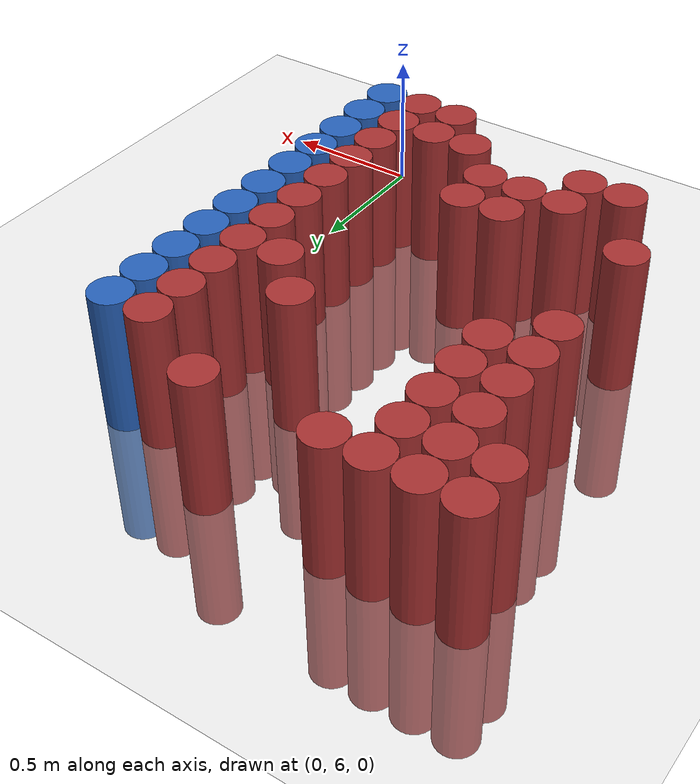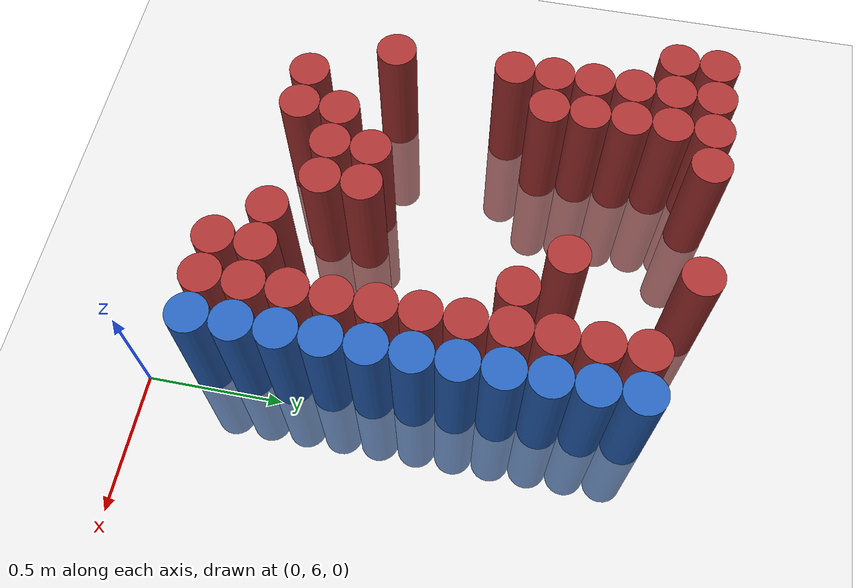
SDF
<sdf version="1.6">
 <world name="default">
  <model name="ground_plane">
   <static>1</static>
   <link name="link">
    <collision name="collision">
     <geometry><plane><normal>0 0 1</normal><size>100 100</size></plane></geometry>
     <surface><friction><ode><mu>100</mu><mu2>50</mu2></ode></friction></surface>
    </collision>
    <visual name="visual">
     <cast_shadows>0</cast_shadows>
     <geometry><plane><normal>0 0 1</normal><size>100 100</size></plane></geometry>
     <material>
      <script><uri>file://media/materials/scripts/gazebo.material</uri><name>Gazebo/Grey</name></script>
     </material>
    </visual>
   </link>
  </model>
  <model name="unit_cylinder_223">
   <static>1</static>
   <pose>-1.425000 7.725000 0.000000 0.000000 0.000000 0.000000</pose>
   <link name="link">
    <inertial>
     <mass>1</mass>
     <inertia><ixx>0.145833</ixx><ixy>0</ixy><ixz>0</ixz><iyy>0.145833</iyy><iyz>0</iyz><izz>0.125</izz></inertia>
    </inertial>
    <collision name="collision">
     <geometry><cylinder><radius>0.075000</radius><length>1</length></cylinder></geometry>
    </collision>
    <visual name="visual">
     <geometry><cylinder><radius>0.075000</radius><length>1</length></cylinder></geometry>
     <material>
      <ambient>0.648000 0.192000 0.192000 1</ambient>
      <diffuse>0.648000 0.192000 0.192000 1</diffuse>
     </material>
     <material>
      <script><name>Gazebo/Grey</name><uri>file://media/materials/scripts/gazebo.material</uri></script>
     </material>
    </visual>
   </link>
  </model>
  <model name="unit_cylinder_224">
   <static>1</static>
   <pose>-1.425000 7.875000 0.000000 0.000000 0.000000 0.000000</pose>
   <link name="link">
    <inertial>
     <mass>1</mass>
     <inertia><ixx>0.145833</ixx><ixy>0</ixy><ixz>0</ixz><iyy>0.145833</iyy><iyz>0</iyz><izz>0.125</izz></inertia>
    </inertial>
    <collision name="collision">
     <geometry><cylinder><radius>0.075000</radius><length>1</length></cylinder></geometry>
    </collision>
    <visual name="visual">
     <geometry><cylinder><radius>0.075000</radius><length>1</length></cylinder></geometry>
     <material>
      <ambient>0.648000 0.192000 0.192000 1</ambient>
      <diffuse>0.648000 0.192000 0.192000 1</diffuse>
     </material>
     <material>
      <script><name>Gazebo/Grey</name><uri>file://media/materials/scripts/gazebo.material</uri></script>
     </material>
    </visual>
   </link>
  </model>
  <model name="unit_cylinder_228">
   <static>1</static>
   <pose>-1.275000 6.675000 0.000000 0.000000 0.000000 0.000000</pose>
   <link name="link">
    <inertial>
     <mass>1</mass>
     <inertia><ixx>0.145833</ixx><ixy>0</ixy><ixz>0</ixz><iyy>0.145833</iyy><iyz>0</iyz><izz>0.125</izz></inertia>
    </inertial>
    <collision name="collision">
     <geometry><cylinder><radius>0.075000</radius><length>1</length></cylinder></geometry>
    </collision>
    <visual name="visual">
     <geometry><cylinder><radius>0.075000</radius><length>1</length></cylinder></geometry>
     <material>
      <ambient>0.648000 0.192000 0.192000 1</ambient>
      <diffuse>0.648000 0.192000 0.192000 1</diffuse>
     </material>
     <material>
      <script><name>Gazebo/Grey</name><uri>file://media/materials/scripts/gazebo.material</uri></script>
     </material>
    </visual>
   </link>
  </model>
  <model name="unit_cylinder_229">
   <static>1</static>
   <pose>-1.275000 7.125000 0.000000 0.000000 0.000000 0.000000</pose>
   <link name="link">
    <inertial>
     <mass>1</mass>
     <inertia><ixx>0.145833</ixx><ixy>0</ixy><ixz>0</ixz><iyy>0.145833</iyy><iyz>0</iyz><izz>0.125</izz></inertia>
    </inertial>
    <collision name="collision">
     <geometry><cylinder><radius>0.075000</radius><length>1</length></cylinder></geometry>
    </collision>
    <visual name="visual">
     <geometry><cylinder><radius>0.075000</radius><length>1</length></cylinder></geometry>
     <material>
      <ambient>0.648000 0.192000 0.192000 1</ambient>
      <diffuse>0.648000 0.192000 0.192000 1</diffuse>
     </material>
     <material>
      <script><name>Gazebo/Grey</name><uri>file://media/materials/scripts/gazebo.material</uri></script>
     </material>
    </visual>
   </link>
  </model>
  <model name="unit_cylinder_230">
   <static>1</static>
   <pose>-1.275000 7.275000 0.000000 0.000000 0.000000 0.000000</pose>
   <link name="link">
    <inertial>
     <mass>1</mass>
     <inertia><ixx>0.145833</ixx><ixy>0</ixy><ixz>0</ixz><iyy>0.145833</iyy><iyz>0</iyz><izz>0.125</izz></inertia>
    </inertial>
    <collision name="collision">
     <geometry><cylinder><radius>0.075000</radius><length>1</length></cylinder></geometry>
    </collision>
    <visual name="visual">
     <geometry><cylinder><radius>0.075000</radius><length>1</length></cylinder></geometry>
     <material>
      <ambient>0.648000 0.192000 0.192000 1</ambient>
      <diffuse>0.648000 0.192000 0.192000 1</diffuse>
     </material>
     <material>
      <script><name>Gazebo/Grey</name><uri>file://media/materials/scripts/gazebo.material</uri></script>
     </material>
    </visual>
   </link>
  </model>
  <model name="unit_cylinder_231">
   <static>1</static>
   <pose>-1.275000 7.425000 0.000000 0.000000 0.000000 0.000000</pose>
   <link name="link">
    <inertial>
     <mass>1</mass>
     <inertia><ixx>0.145833</ixx><ixy>0</ixy><ixz>0</ixz><iyy>0.145833</iyy><iyz>0</iyz><izz>0.125</izz></inertia>
    </inertial>
    <collision name="collision">
     <geometry><cylinder><radius>0.075000</radius><length>1</length></cylinder></geometry>
    </collision>
    <visual name="visual">
     <geometry><cylinder><radius>0.075000</radius><length>1</length></cylinder></geometry>
     <material>
      <ambient>0.648000 0.192000 0.192000 1</ambient>
      <diffuse>0.648000 0.192000 0.192000 1</diffuse>
     </material>
     <material>
      <script><name>Gazebo/Grey</name><uri>file://media/materials/scripts/gazebo.material</uri></script>
     </material>
    </visual>
   </link>
  </model>
  <model name="unit_cylinder_232">
   <static>1</static>
   <pose>-1.275000 7.575000 0.000000 0.000000 0.000000 0.000000</pose>
   <link name="link">
    <inertial>
     <mass>1</mass>
     <inertia><ixx>0.145833</ixx><ixy>0</ixy><ixz>0</ixz><iyy>0.145833</iyy><iyz>0</iyz><izz>0.125</izz></inertia>
    </inertial>
    <collision name="collision">
     <geometry><cylinder><radius>0.075000</radius><length>1</length></cylinder></geometry>
    </collision>
    <visual name="visual">
     <geometry><cylinder><radius>0.075000</radius><length>1</length></cylinder></geometry>
     <material>
      <ambient>0.648000 0.192000 0.192000 1</ambient>
      <diffuse>0.648000 0.192000 0.192000 1</diffuse>
     </material>
     <material>
      <script><name>Gazebo/Grey</name><uri>file://media/materials/scripts/gazebo.material</uri></script>
     </material>
    </visual>
   </link>
  </model>
  <model name="unit_cylinder_233">
   <static>1</static>
   <pose>-1.275000 7.725000 0.000000 0.000000 0.000000 0.000000</pose>
   <link name="link">
    <inertial>
     <mass>1</mass>
     <inertia><ixx>0.145833</ixx><ixy>0</ixy><ixz>0</ixz><iyy>0.145833</iyy><iyz>0</iyz><izz>0.125</izz></inertia>
    </inertial>
    <collision name="collision">
     <geometry><cylinder><radius>0.075000</radius><length>1</length></cylinder></geometry>
    </collision>
    <visual name="visual">
     <geometry><cylinder><radius>0.075000</radius><length>1</length></cylinder></geometry>
     <material>
      <ambient>0.648000 0.192000 0.192000 1</ambient>
      <diffuse>0.648000 0.192000 0.192000 1</diffuse>
     </material>
     <material>
      <script><name>Gazebo/Grey</name><uri>file://media/materials/scripts/gazebo.material</uri></script>
     </material>
    </visual>
   </link>
  </model>
  <model name="unit_cylinder_234">
   <static>1</static>
   <pose>-1.275000 7.875000 0.000000 0.000000 0.000000 0.000000</pose>
   <link name="link">
    <inertial>
     <mass>1</mass>
     <inertia><ixx>0.145833</ixx><ixy>0</ixy><ixz>0</ixz><iyy>0.145833</iyy><iyz>0</iyz><izz>0.125</izz></inertia>
    </inertial>
    <collision name="collision">
     <geometry><cylinder><radius>0.075000</radius><length>1</length></cylinder></geometry>
    </collision>
    <visual name="visual">
     <geometry><cylinder><radius>0.075000</radius><length>1</length></cylinder></geometry>
     <material>
      <ambient>0.648000 0.192000 0.192000 1</ambient>
      <diffuse>0.648000 0.192000 0.192000 1</diffuse>
     </material>
     <material>
      <script><name>Gazebo/Grey</name><uri>file://media/materials/scripts/gazebo.material</uri></script>
     </material>
    </visual>
   </link>
  </model>
  <model name="unit_cylinder_239">
   <static>1</static>
   <pose>-1.125000 6.375000 0.000000 0.000000 0.000000 0.000000</pose>
   <link name="link">
    <inertial>
     <mass>1</mass>
     <inertia><ixx>0.145833</ixx><ixy>0</ixy><ixz>0</ixz><iyy>0.145833</iyy><iyz>0</iyz><izz>0.125</izz></inertia>
    </inertial>
    <collision name="collision">
     <geometry><cylinder><radius>0.075000</radius><length>1</length></cylinder></geometry>
    </collision>
    <visual name="visual">
     <geometry><cylinder><radius>0.075000</radius><length>1</length></cylinder></geometry>
     <material>
      <ambient>0.648000 0.192000 0.192000 1</ambient>
      <diffuse>0.648000 0.192000 0.192000 1</diffuse>
     </material>
     <material>
      <script><name>Gazebo/Grey</name><uri>file://media/materials/scripts/gazebo.material</uri></script>
     </material>
    </visual>
   </link>
  </model>
  <model name="unit_cylinder_240">
   <static>1</static>
   <pose>-1.125000 7.275000 0.000000 0.000000 0.000000 0.000000</pose>
   <link name="link">
    <inertial>
     <mass>1</mass>
     <inertia><ixx>0.145833</ixx><ixy>0</ixy><ixz>0</ixz><iyy>0.145833</iyy><iyz>0</iyz><izz>0.125</izz></inertia>
    </inertial>
    <collision name="collision">
     <geometry><cylinder><radius>0.075000</radius><length>1</length></cylinder></geometry>
    </collision>
    <visual name="visual">
     <geometry><cylinder><radius>0.075000</radius><length>1</length></cylinder></geometry>
     <material>
      <ambient>0.648000 0.192000 0.192000 1</ambient>
      <diffuse>0.648000 0.192000 0.192000 1</diffuse>
     </material>
     <material>
      <script><name>Gazebo/Grey</name><uri>file://media/materials/scripts/gazebo.material</uri></script>
     </material>
    </visual>
   </link>
  </model>
  <model name="unit_cylinder_241">
   <static>1</static>
   <pose>-1.125000 7.425000 0.000000 0.000000 0.000000 0.000000</pose>
   <link name="link">
    <inertial>
     <mass>1</mass>
     <inertia><ixx>0.145833</ixx><ixy>0</ixy><ixz>0</ixz><iyy>0.145833</iyy><iyz>0</iyz><izz>0.125</izz></inertia>
    </inertial>
    <collision name="collision">
     <geometry><cylinder><radius>0.075000</radius><length>1</length></cylinder></geometry>
    </collision>
    <visual name="visual">
     <geometry><cylinder><radius>0.075000</radius><length>1</length></cylinder></geometry>
     <material>
      <ambient>0.648000 0.192000 0.192000 1</ambient>
      <diffuse>0.648000 0.192000 0.192000 1</diffuse>
     </material>
     <material>
      <script><name>Gazebo/Grey</name><uri>file://media/materials/scripts/gazebo.material</uri></script>
     </material>
    </visual>
   </link>
  </model>
  <model name="unit_cylinder_242">
   <static>1</static>
   <pose>-1.125000 7.575000 0.000000 0.000000 0.000000 0.000000</pose>
   <link name="link">
    <inertial>
     <mass>1</mass>
     <inertia><ixx>0.145833</ixx><ixy>0</ixy><ixz>0</ixz><iyy>0.145833</iyy><iyz>0</iyz><izz>0.125</izz></inertia>
    </inertial>
    <collision name="collision">
     <geometry><cylinder><radius>0.075000</radius><length>1</length></cylinder></geometry>
    </collision>
    <visual name="visual">
     <geometry><cylinder><radius>0.075000</radius><length>1</length></cylinder></geometry>
     <material>
      <ambient>0.648000 0.192000 0.192000 1</ambient>
      <diffuse>0.648000 0.192000 0.192000 1</diffuse>
     </material>
     <material>
      <script><name>Gazebo/Grey</name><uri>file://media/materials/scripts/gazebo.material</uri></script>
     </material>
    </visual>
   </link>
  </model>
  <model name="unit_cylinder_243">
   <static>1</static>
   <pose>-1.125000 7.725000 0.000000 0.000000 0.000000 0.000000</pose>
   <link name="link">
    <inertial>
     <mass>1</mass>
     <inertia><ixx>0.145833</ixx><ixy>0</ixy><ixz>0</ixz><iyy>0.145833</iyy><iyz>0</iyz><izz>0.125</izz></inertia>
    </inertial>
    <collision name="collision">
     <geometry><cylinder><radius>0.075000</radius><length>1</length></cylinder></geometry>
    </collision>
    <visual name="visual">
     <geometry><cylinder><radius>0.075000</radius><length>1</length></cylinder></geometry>
     <material>
      <ambient>0.648000 0.192000 0.192000 1</ambient>
      <diffuse>0.648000 0.192000 0.192000 1</diffuse>
     </material>
     <material>
      <script><name>Gazebo/Grey</name><uri>file://media/materials/scripts/gazebo.material</uri></script>
     </material>
    </visual>
   </link>
  </model>
  <model name="unit_cylinder_244">
   <static>1</static>
   <pose>-1.125000 7.875000 0.000000 0.000000 0.000000 0.000000</pose>
   <link name="link">
    <inertial>
     <mass>1</mass>
     <inertia><ixx>0.145833</ixx><ixy>0</ixy><ixz>0</ixz><iyy>0.145833</iyy><iyz>0</iyz><izz>0.125</izz></inertia>
    </inertial>
    <collision name="collision">
     <geometry><cylinder><radius>0.075000</radius><length>1</length></cylinder></geometry>
    </collision>
    <visual name="visual">
     <geometry><cylinder><radius>0.075000</radius><length>1</length></cylinder></geometry>
     <material>
      <ambient>0.648000 0.192000 0.192000 1</ambient>
      <diffuse>0.648000 0.192000 0.192000 1</diffuse>
     </material>
     <material>
      <script><name>Gazebo/Grey</name><uri>file://media/materials/scripts/gazebo.material</uri></script>
     </material>
    </visual>
   </link>
  </model>
  <model name="unit_cylinder_250">
   <static>1</static>
   <pose>-0.975000 6.375000 0.000000 0.000000 0.000000 0.000000</pose>
   <link name="link">
    <inertial>
     <mass>1</mass>
     <inertia><ixx>0.145833</ixx><ixy>0</ixy><ixz>0</ixz><iyy>0.145833</iyy><iyz>0</iyz><izz>0.125</izz></inertia>
    </inertial>
    <collision name="collision">
     <geometry><cylinder><radius>0.075000</radius><length>1</length></cylinder></geometry>
    </collision>
    <visual name="visual">
     <geometry><cylinder><radius>0.075000</radius><length>1</length></cylinder></geometry>
     <material>
      <ambient>0.648000 0.192000 0.192000 1</ambient>
      <diffuse>0.648000 0.192000 0.192000 1</diffuse>
     </material>
     <material>
      <script><name>Gazebo/Grey</name><uri>file://media/materials/scripts/gazebo.material</uri></script>
     </material>
    </visual>
   </link>
  </model>
  <model name="unit_cylinder_251">
   <static>1</static>
   <pose>-0.975000 6.525000 0.000000 0.000000 0.000000 0.000000</pose>
   <link name="link">
    <inertial>
     <mass>1</mass>
     <inertia><ixx>0.145833</ixx><ixy>0</ixy><ixz>0</ixz><iyy>0.145833</iyy><iyz>0</iyz><izz>0.125</izz></inertia>
    </inertial>
    <collision name="collision">
     <geometry><cylinder><radius>0.075000</radius><length>1</length></cylinder></geometry>
    </collision>
    <visual name="visual">
     <geometry><cylinder><radius>0.075000</radius><length>1</length></cylinder></geometry>
     <material>
      <ambient>0.648000 0.192000 0.192000 1</ambient>
      <diffuse>0.648000 0.192000 0.192000 1</diffuse>
     </material>
     <material>
      <script><name>Gazebo/Grey</name><uri>file://media/materials/scripts/gazebo.material</uri></script>
     </material>
    </visual>
   </link>
  </model>
  <model name="unit_cylinder_252">
   <static>1</static>
   <pose>-0.975000 7.875000 0.000000 0.000000 0.000000 0.000000</pose>
   <link name="link">
    <inertial>
     <mass>1</mass>
     <inertia><ixx>0.145833</ixx><ixy>0</ixy><ixz>0</ixz><iyy>0.145833</iyy><iyz>0</iyz><izz>0.125</izz></inertia>
    </inertial>
    <collision name="collision">
     <geometry><cylinder><radius>0.075000</radius><length>1</length></cylinder></geometry>
    </collision>
    <visual name="visual">
     <geometry><cylinder><radius>0.075000</radius><length>1</length></cylinder></geometry>
     <material>
      <ambient>0.648000 0.192000 0.192000 1</ambient>
      <diffuse>0.648000 0.192000 0.192000 1</diffuse>
     </material>
     <material>
      <script><name>Gazebo/Grey</name><uri>file://media/materials/scripts/gazebo.material</uri></script>
     </material>
    </visual>
   </link>
  </model>
  <model name="unit_cylinder_258">
   <static>1</static>
   <pose>-0.825000 6.525000 0.000000 0.000000 0.000000 0.000000</pose>
   <link name="link">
    <inertial>
     <mass>1</mass>
     <inertia><ixx>0.145833</ixx><ixy>0</ixy><ixz>0</ixz><iyy>0.145833</iyy><iyz>0</iyz><izz>0.125</izz></inertia>
    </inertial>
    <collision name="collision">
     <geometry><cylinder><radius>0.075000</radius><length>1</length></cylinder></geometry>
    </collision>
    <visual name="visual">
     <geometry><cylinder><radius>0.075000</radius><length>1</length></cylinder></geometry>
     <material>
      <ambient>0.648000 0.192000 0.192000 1</ambient>
      <diffuse>0.648000 0.192000 0.192000 1</diffuse>
     </material>
     <material>
      <script><name>Gazebo/Grey</name><uri>file://media/materials/scripts/gazebo.material</uri></script>
     </material>
    </visual>
   </link>
  </model>
  <model name="unit_cylinder_259">
   <static>1</static>
   <pose>-0.825000 6.675000 0.000000 0.000000 0.000000 0.000000</pose>
   <link name="link">
    <inertial>
     <mass>1</mass>
     <inertia><ixx>0.145833</ixx><ixy>0</ixy><ixz>0</ixz><iyy>0.145833</iyy><iyz>0</iyz><izz>0.125</izz></inertia>
    </inertial>
    <collision name="collision">
     <geometry><cylinder><radius>0.075000</radius><length>1</length></cylinder></geometry>
    </collision>
    <visual name="visual">
     <geometry><cylinder><radius>0.075000</radius><length>1</length></cylinder></geometry>
     <material>
      <ambient>0.648000 0.192000 0.192000 1</ambient>
      <diffuse>0.648000 0.192000 0.192000 1</diffuse>
     </material>
     <material>
      <script><name>Gazebo/Grey</name><uri>file://media/materials/scripts/gazebo.material</uri></script>
     </material>
    </visual>
   </link>
  </model>
  <model name="unit_cylinder_265">
   <static>1</static>
   <pose>-0.675000 6.525000 0.000000 0.000000 0.000000 0.000000</pose>
   <link name="link">
    <inertial>
     <mass>1</mass>
     <inertia><ixx>0.145833</ixx><ixy>0</ixy><ixz>0</ixz><iyy>0.145833</iyy><iyz>0</iyz><izz>0.125</izz></inertia>
    </inertial>
    <collision name="collision">
     <geometry><cylinder><radius>0.075000</radius><length>1</length></cylinder></geometry>
    </collision>
    <visual name="visual">
     <geometry><cylinder><radius>0.075000</radius><length>1</length></cylinder></geometry>
     <material>
      <ambient>0.648000 0.192000 0.192000 1</ambient>
      <diffuse>0.648000 0.192000 0.192000 1</diffuse>
     </material>
     <material>
      <script><name>Gazebo/Grey</name><uri>file://media/materials/scripts/gazebo.material</uri></script>
     </material>
    </visual>
   </link>
  </model>
  <model name="unit_cylinder_266">
   <static>1</static>
   <pose>-0.675000 6.675000 0.000000 0.000000 0.000000 0.000000</pose>
   <link name="link">
    <inertial>
     <mass>1</mass>
     <inertia><ixx>0.145833</ixx><ixy>0</ixy><ixz>0</ixz><iyy>0.145833</iyy><iyz>0</iyz><izz>0.125</izz></inertia>
    </inertial>
    <collision name="collision">
     <geometry><cylinder><radius>0.075000</radius><length>1</length></cylinder></geometry>
    </collision>
    <visual name="visual">
     <geometry><cylinder><radius>0.075000</radius><length>1</length></cylinder></geometry>
     <material>
      <ambient>0.648000 0.192000 0.192000 1</ambient>
      <diffuse>0.648000 0.192000 0.192000 1</diffuse>
     </material>
     <material>
      <script><name>Gazebo/Grey</name><uri>file://media/materials/scripts/gazebo.material</uri></script>
     </material>
    </visual>
   </link>
  </model>
  <model name="unit_cylinder_271">
   <static>1</static>
   <pose>-0.525000 6.375000 0.000000 0.000000 0.000000 0.000000</pose>
   <link name="link">
    <inertial>
     <mass>1</mass>
     <inertia><ixx>0.145833</ixx><ixy>0</ixy><ixz>0</ixz><iyy>0.145833</iyy><iyz>0</iyz><izz>0.125</izz></inertia>
    </inertial>
    <collision name="collision">
     <geometry><cylinder><radius>0.075000</radius><length>1</length></cylinder></geometry>
    </collision>
    <visual name="visual">
     <geometry><cylinder><radius>0.075000</radius><length>1</length></cylinder></geometry>
     <material>
      <ambient>0.648000 0.192000 0.192000 1</ambient>
      <diffuse>0.648000 0.192000 0.192000 1</diffuse>
     </material>
     <material>
      <script><name>Gazebo/Grey</name><uri>file://media/materials/scripts/gazebo.material</uri></script>
     </material>
    </visual>
   </link>
  </model>
  <model name="unit_cylinder_272">
   <static>1</static>
   <pose>-0.525000 7.425000 0.000000 0.000000 0.000000 0.000000</pose>
   <link name="link">
    <inertial>
     <mass>1</mass>
     <inertia><ixx>0.145833</ixx><ixy>0</ixy><ixz>0</ixz><iyy>0.145833</iyy><iyz>0</iyz><izz>0.125</izz></inertia>
    </inertial>
    <collision name="collision">
     <geometry><cylinder><radius>0.075000</radius><length>1</length></cylinder></geometry>
    </collision>
    <visual name="visual">
     <geometry><cylinder><radius>0.075000</radius><length>1</length></cylinder></geometry>
     <material>
      <ambient>0.648000 0.192000 0.192000 1</ambient>
      <diffuse>0.648000 0.192000 0.192000 1</diffuse>
     </material>
     <material>
      <script><name>Gazebo/Grey</name><uri>file://media/materials/scripts/gazebo.material</uri></script>
     </material>
    </visual>
   </link>
  </model>
  <model name="unit_cylinder_273">
   <static>1</static>
   <pose>-0.525000 7.875000 0.000000 0.000000 0.000000 0.000000</pose>
   <link name="link">
    <inertial>
     <mass>1</mass>
     <inertia><ixx>0.145833</ixx><ixy>0</ixy><ixz>0</ixz><iyy>0.145833</iyy><iyz>0</iyz><izz>0.125</izz></inertia>
    </inertial>
    <collision name="collision">
     <geometry><cylinder><radius>0.075000</radius><length>1</length></cylinder></geometry>
    </collision>
    <visual name="visual">
     <geometry><cylinder><radius>0.075000</radius><length>1</length></cylinder></geometry>
     <material>
      <ambient>0.648000 0.192000 0.192000 1</ambient>
      <diffuse>0.648000 0.192000 0.192000 1</diffuse>
     </material>
     <material>
      <script><name>Gazebo/Grey</name><uri>file://media/materials/scripts/gazebo.material</uri></script>
     </material>
    </visual>
   </link>
  </model>
  <model name="unit_cylinder_280">
   <static>1</static>
   <pose>-0.375000 6.225000 0.000000 0.000000 0.000000 0.000000</pose>
   <link name="link">
    <inertial>
     <mass>1</mass>
     <inertia><ixx>0.145833</ixx><ixy>0</ixy><ixz>0</ixz><iyy>0.145833</iyy><iyz>0</iyz><izz>0.125</izz></inertia>
    </inertial>
    <collision name="collision">
     <geometry><cylinder><radius>0.075000</radius><length>1</length></cylinder></geometry>
    </collision>
    <visual name="visual">
     <geometry><cylinder><radius>0.075000</radius><length>1</length></cylinder></geometry>
     <material>
      <ambient>0.648000 0.192000 0.192000 1</ambient>
      <diffuse>0.648000 0.192000 0.192000 1</diffuse>
     </material>
     <material>
      <script><name>Gazebo/Grey</name><uri>file://media/materials/scripts/gazebo.material</uri></script>
     </material>
    </visual>
   </link>
  </model>
  <model name="unit_cylinder_281">
   <static>1</static>
   <pose>-0.375000 6.375000 0.000000 0.000000 0.000000 0.000000</pose>
   <link name="link">
    <inertial>
     <mass>1</mass>
     <inertia><ixx>0.145833</ixx><ixy>0</ixy><ixz>0</ixz><iyy>0.145833</iyy><iyz>0</iyz><izz>0.125</izz></inertia>
    </inertial>
    <collision name="collision">
     <geometry><cylinder><radius>0.075000</radius><length>1</length></cylinder></geometry>
    </collision>
    <visual name="visual">
     <geometry><cylinder><radius>0.075000</radius><length>1</length></cylinder></geometry>
     <material>
      <ambient>0.648000 0.192000 0.192000 1</ambient>
      <diffuse>0.648000 0.192000 0.192000 1</diffuse>
     </material>
     <material>
      <script><name>Gazebo/Grey</name><uri>file://media/materials/scripts/gazebo.material</uri></script>
     </material>
    </visual>
   </link>
  </model>
  <model name="unit_cylinder_282">
   <static>1</static>
   <pose>-0.375000 7.275000 0.000000 0.000000 0.000000 0.000000</pose>
   <link name="link">
    <inertial>
     <mass>1</mass>
     <inertia><ixx>0.145833</ixx><ixy>0</ixy><ixz>0</ixz><iyy>0.145833</iyy><iyz>0</iyz><izz>0.125</izz></inertia>
    </inertial>
    <collision name="collision">
     <geometry><cylinder><radius>0.075000</radius><length>1</length></cylinder></geometry>
    </collision>
    <visual name="visual">
     <geometry><cylinder><radius>0.075000</radius><length>1</length></cylinder></geometry>
     <material>
      <ambient>0.648000 0.192000 0.192000 1</ambient>
      <diffuse>0.648000 0.192000 0.192000 1</diffuse>
     </material>
     <material>
      <script><name>Gazebo/Grey</name><uri>file://media/materials/scripts/gazebo.material</uri></script>
     </material>
    </visual>
   </link>
  </model>
  <model name="unit_cylinder_294">
   <static>1</static>
   <pose>-0.225000 6.225000 0.000000 0.000000 0.000000 0.000000</pose>
   <link name="link">
    <inertial>
     <mass>1</mass>
     <inertia><ixx>0.145833</ixx><ixy>0</ixy><ixz>0</ixz><iyy>0.145833</iyy><iyz>0</iyz><izz>0.125</izz></inertia>
    </inertial>
    <collision name="collision">
     <geometry><cylinder><radius>0.075000</radius><length>1</length></cylinder></geometry>
    </collision>
    <visual name="visual">
     <geometry><cylinder><radius>0.075000</radius><length>1</length></cylinder></geometry>
     <material>
      <ambient>0.648000 0.192000 0.192000 1</ambient>
      <diffuse>0.648000 0.192000 0.192000 1</diffuse>
     </material>
     <material>
      <script><name>Gazebo/Grey</name><uri>file://media/materials/scripts/gazebo.material</uri></script>
     </material>
    </visual>
   </link>
  </model>
  <model name="unit_cylinder_295">
   <static>1</static>
   <pose>-0.225000 6.375000 0.000000 0.000000 0.000000 0.000000</pose>
   <link name="link">
    <inertial>
     <mass>1</mass>
     <inertia><ixx>0.145833</ixx><ixy>0</ixy><ixz>0</ixz><iyy>0.145833</iyy><iyz>0</iyz><izz>0.125</izz></inertia>
    </inertial>
    <collision name="collision">
     <geometry><cylinder><radius>0.075000</radius><length>1</length></cylinder></geometry>
    </collision>
    <visual name="visual">
     <geometry><cylinder><radius>0.075000</radius><length>1</length></cylinder></geometry>
     <material>
      <ambient>0.648000 0.192000 0.192000 1</ambient>
      <diffuse>0.648000 0.192000 0.192000 1</diffuse>
     </material>
     <material>
      <script><name>Gazebo/Grey</name><uri>file://media/materials/scripts/gazebo.material</uri></script>
     </material>
    </visual>
   </link>
  </model>
  <model name="unit_cylinder_296">
   <static>1</static>
   <pose>-0.225000 6.525000 0.000000 0.000000 0.000000 0.000000</pose>
   <link name="link">
    <inertial>
     <mass>1</mass>
     <inertia><ixx>0.145833</ixx><ixy>0</ixy><ixz>0</ixz><iyy>0.145833</iyy><iyz>0</iyz><izz>0.125</izz></inertia>
    </inertial>
    <collision name="collision">
     <geometry><cylinder><radius>0.075000</radius><length>1</length></cylinder></geometry>
    </collision>
    <visual name="visual">
     <geometry><cylinder><radius>0.075000</radius><length>1</length></cylinder></geometry>
     <material>
      <ambient>0.648000 0.192000 0.192000 1</ambient>
      <diffuse>0.648000 0.192000 0.192000 1</diffuse>
     </material>
     <material>
      <script><name>Gazebo/Grey</name><uri>file://media/materials/scripts/gazebo.material</uri></script>
     </material>
    </visual>
   </link>
  </model>
  <model name="unit_cylinder_297">
   <static>1</static>
   <pose>-0.225000 6.675000 0.000000 0.000000 0.000000 0.000000</pose>
   <link name="link">
    <inertial>
     <mass>1</mass>
     <inertia><ixx>0.145833</ixx><ixy>0</ixy><ixz>0</ixz><iyy>0.145833</iyy><iyz>0</iyz><izz>0.125</izz></inertia>
    </inertial>
    <collision name="collision">
     <geometry><cylinder><radius>0.075000</radius><length>1</length></cylinder></geometry>
    </collision>
    <visual name="visual">
     <geometry><cylinder><radius>0.075000</radius><length>1</length></cylinder></geometry>
     <material>
      <ambient>0.648000 0.192000 0.192000 1</ambient>
      <diffuse>0.648000 0.192000 0.192000 1</diffuse>
     </material>
     <material>
      <script><name>Gazebo/Grey</name><uri>file://media/materials/scripts/gazebo.material</uri></script>
     </material>
    </visual>
   </link>
  </model>
  <model name="unit_cylinder_298">
   <static>1</static>
   <pose>-0.225000 6.825000 0.000000 0.000000 0.000000 0.000000</pose>
   <link name="link">
    <inertial>
     <mass>1</mass>
     <inertia><ixx>0.145833</ixx><ixy>0</ixy><ixz>0</ixz><iyy>0.145833</iyy><iyz>0</iyz><izz>0.125</izz></inertia>
    </inertial>
    <collision name="collision">
     <geometry><cylinder><radius>0.075000</radius><length>1</length></cylinder></geometry>
    </collision>
    <visual name="visual">
     <geometry><cylinder><radius>0.075000</radius><length>1</length></cylinder></geometry>
     <material>
      <ambient>0.648000 0.192000 0.192000 1</ambient>
      <diffuse>0.648000 0.192000 0.192000 1</diffuse>
     </material>
     <material>
      <script><name>Gazebo/Grey</name><uri>file://media/materials/scripts/gazebo.material</uri></script>
     </material>
    </visual>
   </link>
  </model>
  <model name="unit_cylinder_299">
   <static>1</static>
   <pose>-0.225000 6.975000 0.000000 0.000000 0.000000 0.000000</pose>
   <link name="link">
    <inertial>
     <mass>1</mass>
     <inertia><ixx>0.145833</ixx><ixy>0</ixy><ixz>0</ixz><iyy>0.145833</iyy><iyz>0</iyz><izz>0.125</izz></inertia>
    </inertial>
    <collision name="collision">
     <geometry><cylinder><radius>0.075000</radius><length>1</length></cylinder></geometry>
    </collision>
    <visual name="visual">
     <geometry><cylinder><radius>0.075000</radius><length>1</length></cylinder></geometry>
     <material>
      <ambient>0.648000 0.192000 0.192000 1</ambient>
      <diffuse>0.648000 0.192000 0.192000 1</diffuse>
     </material>
     <material>
      <script><name>Gazebo/Grey</name><uri>file://media/materials/scripts/gazebo.material</uri></script>
     </material>
    </visual>
   </link>
  </model>
  <model name="unit_cylinder_300">
   <static>1</static>
   <pose>-0.225000 7.125000 0.000000 0.000000 0.000000 0.000000</pose>
   <link name="link">
    <inertial>
     <mass>1</mass>
     <inertia><ixx>0.145833</ixx><ixy>0</ixy><ixz>0</ixz><iyy>0.145833</iyy><iyz>0</iyz><izz>0.125</izz></inertia>
    </inertial>
    <collision name="collision">
     <geometry><cylinder><radius>0.075000</radius><length>1</length></cylinder></geometry>
    </collision>
    <visual name="visual">
     <geometry><cylinder><radius>0.075000</radius><length>1</length></cylinder></geometry>
     <material>
      <ambient>0.648000 0.192000 0.192000 1</ambient>
      <diffuse>0.648000 0.192000 0.192000 1</diffuse>
     </material>
     <material>
      <script><name>Gazebo/Grey</name><uri>file://media/materials/scripts/gazebo.material</uri></script>
     </material>
    </visual>
   </link>
  </model>
  <model name="unit_cylinder_301">
   <static>1</static>
   <pose>-0.225000 7.275000 0.000000 0.000000 0.000000 0.000000</pose>
   <link name="link">
    <inertial>
     <mass>1</mass>
     <inertia><ixx>0.145833</ixx><ixy>0</ixy><ixz>0</ixz><iyy>0.145833</iyy><iyz>0</iyz><izz>0.125</izz></inertia>
    </inertial>
    <collision name="collision">
     <geometry><cylinder><radius>0.075000</radius><length>1</length></cylinder></geometry>
    </collision>
    <visual name="visual">
     <geometry><cylinder><radius>0.075000</radius><length>1</length></cylinder></geometry>
     <material>
      <ambient>0.648000 0.192000 0.192000 1</ambient>
      <diffuse>0.648000 0.192000 0.192000 1</diffuse>
     </material>
     <material>
      <script><name>Gazebo/Grey</name><uri>file://media/materials/scripts/gazebo.material</uri></script>
     </material>
    </visual>
   </link>
  </model>
  <model name="unit_cylinder_302">
   <static>1</static>
   <pose>-0.225000 7.425000 0.000000 0.000000 0.000000 0.000000</pose>
   <link name="link">
    <inertial>
     <mass>1</mass>
     <inertia><ixx>0.145833</ixx><ixy>0</ixy><ixz>0</ixz><iyy>0.145833</iyy><iyz>0</iyz><izz>0.125</izz></inertia>
    </inertial>
    <collision name="collision">
     <geometry><cylinder><radius>0.075000</radius><length>1</length></cylinder></geometry>
    </collision>
    <visual name="visual">
     <geometry><cylinder><radius>0.075000</radius><length>1</length></cylinder></geometry>
     <material>
      <ambient>0.648000 0.192000 0.192000 1</ambient>
      <diffuse>0.648000 0.192000 0.192000 1</diffuse>
     </material>
     <material>
      <script><name>Gazebo/Grey</name><uri>file://media/materials/scripts/gazebo.material</uri></script>
     </material>
    </visual>
   </link>
  </model>
  <model name="unit_cylinder_303">
   <static>1</static>
   <pose>-0.225000 7.575000 0.000000 0.000000 0.000000 0.000000</pose>
   <link name="link">
    <inertial>
     <mass>1</mass>
     <inertia><ixx>0.145833</ixx><ixy>0</ixy><ixz>0</ixz><iyy>0.145833</iyy><iyz>0</iyz><izz>0.125</izz></inertia>
    </inertial>
    <collision name="collision">
     <geometry><cylinder><radius>0.075000</radius><length>1</length></cylinder></geometry>
    </collision>
    <visual name="visual">
     <geometry><cylinder><radius>0.075000</radius><length>1</length></cylinder></geometry>
     <material>
      <ambient>0.648000 0.192000 0.192000 1</ambient>
      <diffuse>0.648000 0.192000 0.192000 1</diffuse>
     </material>
     <material>
      <script><name>Gazebo/Grey</name><uri>file://media/materials/scripts/gazebo.material</uri></script>
     </material>
    </visual>
   </link>
  </model>
  <model name="unit_cylinder_304">
   <static>1</static>
   <pose>-0.225000 7.725000 0.000000 0.000000 0.000000 0.000000</pose>
   <link name="link">
    <inertial>
     <mass>1</mass>
     <inertia><ixx>0.145833</ixx><ixy>0</ixy><ixz>0</ixz><iyy>0.145833</iyy><iyz>0</iyz><izz>0.125</izz></inertia>
    </inertial>
    <collision name="collision">
     <geometry><cylinder><radius>0.075000</radius><length>1</length></cylinder></geometry>
    </collision>
    <visual name="visual">
     <geometry><cylinder><radius>0.075000</radius><length>1</length></cylinder></geometry>
     <material>
      <ambient>0.648000 0.192000 0.192000 1</ambient>
      <diffuse>0.648000 0.192000 0.192000 1</diffuse>
     </material>
     <material>
      <script><name>Gazebo/Grey</name><uri>file://media/materials/scripts/gazebo.material</uri></script>
     </material>
    </visual>
   </link>
  </model>
  <model name="unit_cylinder_324">
   <static>1</static>
   <pose>-0.075000 6.225000 0.000000 0.000000 0.000000 0.000000</pose>
   <link name="link">
    <inertial>
     <mass>1</mass>
     <inertia><ixx>0.145833</ixx><ixy>0</ixy><ixz>0</ixz><iyy>0.145833</iyy><iyz>0</iyz><izz>0.125</izz></inertia>
    </inertial>
    <collision name="collision">
     <geometry><cylinder><radius>0.075000</radius><length>1</length></cylinder></geometry>
    </collision>
    <visual name="visual">
     <geometry><cylinder><radius>0.075000</radius><length>1</length></cylinder></geometry>
     <material>
      <ambient>0.152000 0.379000 0.720000 1</ambient>
      <diffuse>0.152000 0.379000 0.720000 1</diffuse>
     </material>
     <material>
      <script><name>Gazebo/Grey</name><uri>file://media/materials/scripts/gazebo.material</uri></script>
     </material>
    </visual>
   </link>
  </model>
  <model name="unit_cylinder_325">
   <static>1</static>
   <pose>-0.075000 6.375000 0.000000 0.000000 0.000000 0.000000</pose>
   <link name="link">
    <inertial>
     <mass>1</mass>
     <inertia><ixx>0.145833</ixx><ixy>0</ixy><ixz>0</ixz><iyy>0.145833</iyy><iyz>0</iyz><izz>0.125</izz></inertia>
    </inertial>
    <collision name="collision">
     <geometry><cylinder><radius>0.075000</radius><length>1</length></cylinder></geometry>
    </collision>
    <visual name="visual">
     <geometry><cylinder><radius>0.075000</radius><length>1</length></cylinder></geometry>
     <material>
      <ambient>0.152000 0.379000 0.720000 1</ambient>
      <diffuse>0.152000 0.379000 0.720000 1</diffuse>
     </material>
     <material>
      <script><name>Gazebo/Grey</name><uri>file://media/materials/scripts/gazebo.material</uri></script>
     </material>
    </visual>
   </link>
  </model>
  <model name="unit_cylinder_326">
   <static>1</static>
   <pose>-0.075000 6.525000 0.000000 0.000000 0.000000 0.000000</pose>
   <link name="link">
    <inertial>
     <mass>1</mass>
     <inertia><ixx>0.145833</ixx><ixy>0</ixy><ixz>0</ixz><iyy>0.145833</iyy><iyz>0</iyz><izz>0.125</izz></inertia>
    </inertial>
    <collision name="collision">
     <geometry><cylinder><radius>0.075000</radius><length>1</length></cylinder></geometry>
    </collision>
    <visual name="visual">
     <geometry><cylinder><radius>0.075000</radius><length>1</length></cylinder></geometry>
     <material>
      <ambient>0.152000 0.379000 0.720000 1</ambient>
      <diffuse>0.152000 0.379000 0.720000 1</diffuse>
     </material>
     <material>
      <script><name>Gazebo/Grey</name><uri>file://media/materials/scripts/gazebo.material</uri></script>
     </material>
    </visual>
   </link>
  </model>
  <model name="unit_cylinder_327">
   <static>1</static>
   <pose>-0.075000 6.675000 0.000000 0.000000 0.000000 0.000000</pose>
   <link name="link">
    <inertial>
     <mass>1</mass>
     <inertia><ixx>0.145833</ixx><ixy>0</ixy><ixz>0</ixz><iyy>0.145833</iyy><iyz>0</iyz><izz>0.125</izz></inertia>
    </inertial>
    <collision name="collision">
     <geometry><cylinder><radius>0.075000</radius><length>1</length></cylinder></geometry>
    </collision>
    <visual name="visual">
     <geometry><cylinder><radius>0.075000</radius><length>1</length></cylinder></geometry>
     <material>
      <ambient>0.152000 0.379000 0.720000 1</ambient>
      <diffuse>0.152000 0.379000 0.720000 1</diffuse>
     </material>
     <material>
      <script><name>Gazebo/Grey</name><uri>file://media/materials/scripts/gazebo.material</uri></script>
     </material>
    </visual>
   </link>
  </model>
  <model name="unit_cylinder_328">
   <static>1</static>
   <pose>-0.075000 6.825000 0.000000 0.000000 0.000000 0.000000</pose>
   <link name="link">
    <inertial>
     <mass>1</mass>
     <inertia><ixx>0.145833</ixx><ixy>0</ixy><ixz>0</ixz><iyy>0.145833</iyy><iyz>0</iyz><izz>0.125</izz></inertia>
    </inertial>
    <collision name="collision">
     <geometry><cylinder><radius>0.075000</radius><length>1</length></cylinder></geometry>
    </collision>
    <visual name="visual">
     <geometry><cylinder><radius>0.075000</radius><length>1</length></cylinder></geometry>
     <material>
      <ambient>0.152000 0.379000 0.720000 1</ambient>
      <diffuse>0.152000 0.379000 0.720000 1</diffuse>
     </material>
     <material>
      <script><name>Gazebo/Grey</name><uri>file://media/materials/scripts/gazebo.material</uri></script>
     </material>
    </visual>
   </link>
  </model>
  <model name="unit_cylinder_329">
   <static>1</static>
   <pose>-0.075000 6.975000 0.000000 0.000000 0.000000 0.000000</pose>
   <link name="link">
    <inertial>
     <mass>1</mass>
     <inertia><ixx>0.145833</ixx><ixy>0</ixy><ixz>0</ixz><iyy>0.145833</iyy><iyz>0</iyz><izz>0.125</izz></inertia>
    </inertial>
    <collision name="collision">
     <geometry><cylinder><radius>0.075000</radius><length>1</length></cylinder></geometry>
    </collision>
    <visual name="visual">
     <geometry><cylinder><radius>0.075000</radius><length>1</length></cylinder></geometry>
     <material>
      <ambient>0.152000 0.379000 0.720000 1</ambient>
      <diffuse>0.152000 0.379000 0.720000 1</diffuse>
     </material>
     <material>
      <script><name>Gazebo/Grey</name><uri>file://media/materials/scripts/gazebo.material</uri></script>
     </material>
    </visual>
   </link>
  </model>
  <model name="unit_cylinder_330">
   <static>1</static>
   <pose>-0.075000 7.125000 0.000000 0.000000 0.000000 0.000000</pose>
   <link name="link">
    <inertial>
     <mass>1</mass>
     <inertia><ixx>0.145833</ixx><ixy>0</ixy><ixz>0</ixz><iyy>0.145833</iyy><iyz>0</iyz><izz>0.125</izz></inertia>
    </inertial>
    <collision name="collision">
     <geometry><cylinder><radius>0.075000</radius><length>1</length></cylinder></geometry>
    </collision>
    <visual name="visual">
     <geometry><cylinder><radius>0.075000</radius><length>1</length></cylinder></geometry>
     <material>
      <ambient>0.152000 0.379000 0.720000 1</ambient>
      <diffuse>0.152000 0.379000 0.720000 1</diffuse>
     </material>
     <material>
      <script><name>Gazebo/Grey</name><uri>file://media/materials/scripts/gazebo.material</uri></script>
     </material>
    </visual>
   </link>
  </model>
  <model name="unit_cylinder_331">
   <static>1</static>
   <pose>-0.075000 7.275000 0.000000 0.000000 0.000000 0.000000</pose>
   <link name="link">
    <inertial>
     <mass>1</mass>
     <inertia><ixx>0.145833</ixx><ixy>0</ixy><ixz>0</ixz><iyy>0.145833</iyy><iyz>0</iyz><izz>0.125</izz></inertia>
    </inertial>
    <collision name="collision">
     <geometry><cylinder><radius>0.075000</radius><length>1</length></cylinder></geometry>
    </collision>
    <visual name="visual">
     <geometry><cylinder><radius>0.075000</radius><length>1</length></cylinder></geometry>
     <material>
      <ambient>0.152000 0.379000 0.720000 1</ambient>
      <diffuse>0.152000 0.379000 0.720000 1</diffuse>
     </material>
     <material>
      <script><name>Gazebo/Grey</name><uri>file://media/materials/scripts/gazebo.material</uri></script>
     </material>
    </visual>
   </link>
  </model>
  <model name="unit_cylinder_332">
   <static>1</static>
   <pose>-0.075000 7.425000 0.000000 0.000000 0.000000 0.000000</pose>
   <link name="link">
    <inertial>
     <mass>1</mass>
     <inertia><ixx>0.145833</ixx><ixy>0</ixy><ixz>0</ixz><iyy>0.145833</iyy><iyz>0</iyz><izz>0.125</izz></inertia>
    </inertial>
    <collision name="collision">
     <geometry><cylinder><radius>0.075000</radius><length>1</length></cylinder></geometry>
    </collision>
    <visual name="visual">
     <geometry><cylinder><radius>0.075000</radius><length>1</length></cylinder></geometry>
     <material>
      <ambient>0.152000 0.379000 0.720000 1</ambient>
      <diffuse>0.152000 0.379000 0.720000 1</diffuse>
     </material>
     <material>
      <script><name>Gazebo/Grey</name><uri>file://media/materials/scripts/gazebo.material</uri></script>
     </material>
    </visual>
   </link>
  </model>
  <model name="unit_cylinder_333">
   <static>1</static>
   <pose>-0.075000 7.575000 0.000000 0.000000 0.000000 0.000000</pose>
   <link name="link">
    <inertial>
     <mass>1</mass>
     <inertia><ixx>0.145833</ixx><ixy>0</ixy><ixz>0</ixz><iyy>0.145833</iyy><iyz>0</iyz><izz>0.125</izz></inertia>
    </inertial>
    <collision name="collision">
     <geometry><cylinder><radius>0.075000</radius><length>1</length></cylinder></geometry>
    </collision>
    <visual name="visual">
     <geometry><cylinder><radius>0.075000</radius><length>1</length></cylinder></geometry>
     <material>
      <ambient>0.152000 0.379000 0.720000 1</ambient>
      <diffuse>0.152000 0.379000 0.720000 1</diffuse>
     </material>
     <material>
      <script><name>Gazebo/Grey</name><uri>file://media/materials/scripts/gazebo.material</uri></script>
     </material>
    </visual>
   </link>
  </model>
  <model name="unit_cylinder_334">
   <static>1</static>
   <pose>-0.075000 7.725000 0.000000 0.000000 0.000000 0.000000</pose>
   <link name="link">
    <inertial>
     <mass>1</mass>
     <inertia><ixx>0.145833</ixx><ixy>0</ixy><ixz>0</ixz><iyy>0.145833</iyy><iyz>0</iyz><izz>0.125</izz></inertia>
    </inertial>
    <collision name="collision">
     <geometry><cylinder><radius>0.075000</radius><length>1</length></cylinder></geometry>
    </collision>
    <visual name="visual">
     <geometry><cylinder><radius>0.075000</radius><length>1</length></cylinder></geometry>
     <material>
      <ambient>0.152000 0.379000 0.720000 1</ambient>
      <diffuse>0.152000 0.379000 0.720000 1</diffuse>
     </material>
     <material>
      <script><name>Gazebo/Grey</name><uri>file://media/materials/scripts/gazebo.material</uri></script>
     </material>
    </visual>
   </link>
  </model>
 </world>
</sdf>
